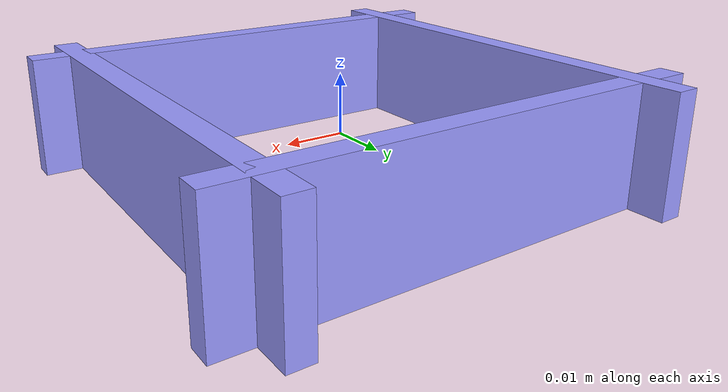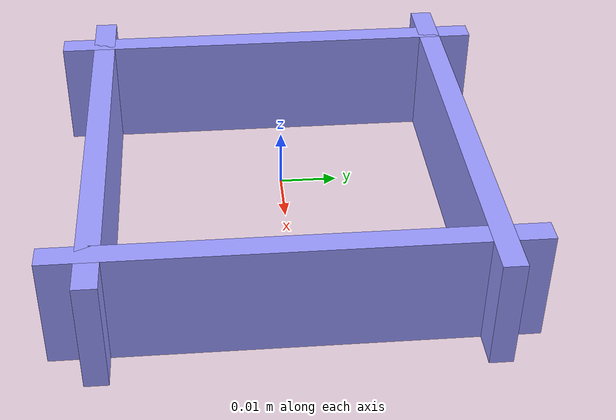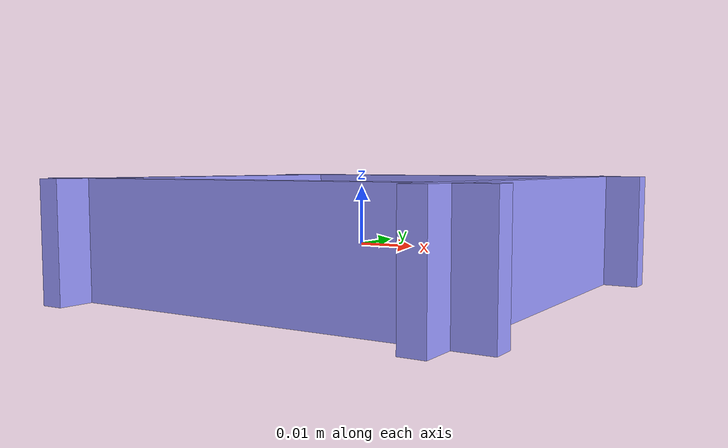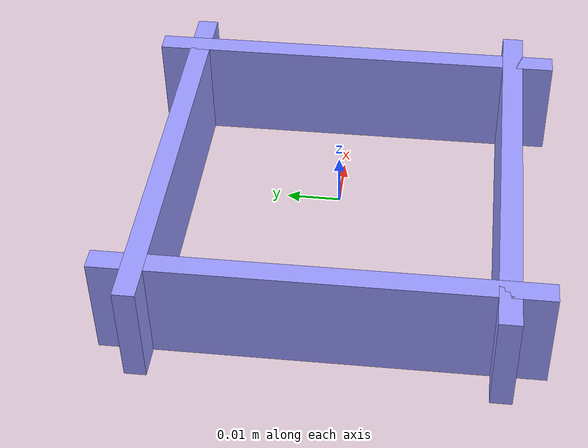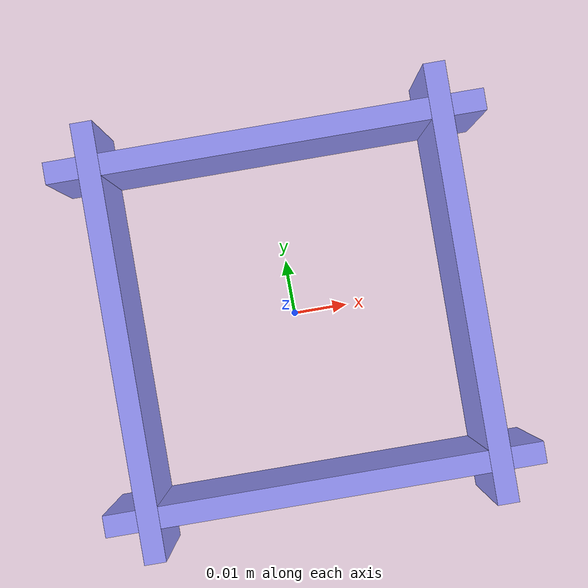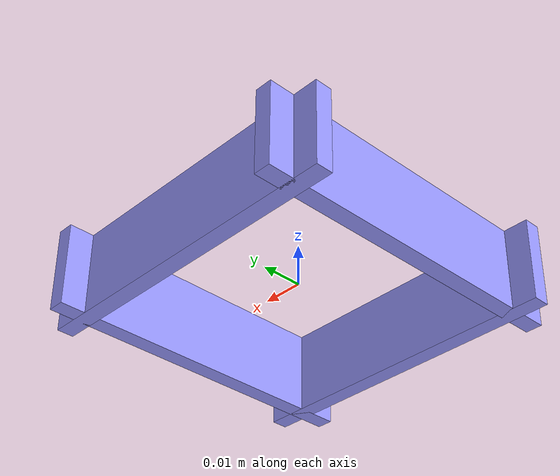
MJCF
<mujoco model="rotate_table">
  <option timestep="0.01" integrator="implicitfast"/>

  <worldbody>

    <body name="table" pos="0 0 0.0">
      <joint name="table_joint" type="hinge" axis="0 0 1" damping="0.1"/>
      <inertial pos="0 0 0" mass="0.5" diaginertia="1e-4 1e-4 2e-4"/>
      <body name="bound1" pos="0.032 0.0 0.0016">
        <geom name="bound1_geom" type="box" size="0.002 0.04 0.01" rgba="0.6 0.6 1 1"/>
      </body>
      <body name="bound2" pos="-0.032 0.0 0.0016">
        <geom name="bound2_geom" type="box" size="0.002 0.04 0.01" rgba="0.6 0.6 1 1"/>
      </body>
      <body name="bound3" pos="0.0 0.032 0.0016">
        <geom name="bound3_geom" type="box" size="0.04 0.002 0.01" rgba="0.6 0.6 1 1"/>
      </body>
      <body name="bound4" pos="0.0 -0.032 0.0016">
        <geom name="bound4_geom" type="box" size="0.04 0.002 0.01" rgba="0.6 0.6 1 1"/>
      </body>
    </body>

  </worldbody>

  <actuator>
    <position  name="table_motor" joint="table_joint" ctrlrange="-3.14159 3.14159"/>
  </actuator>
</mujoco>
